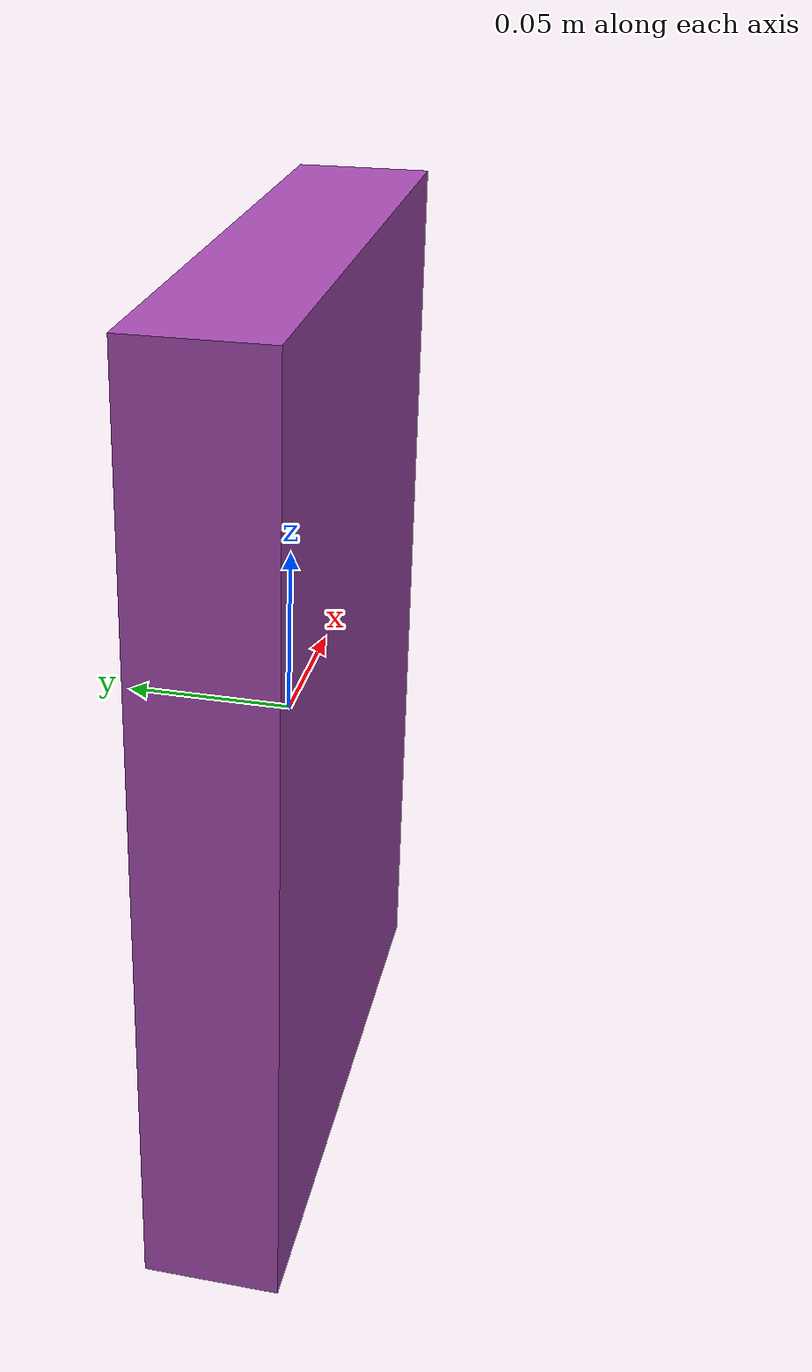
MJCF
<mujoco model="book_large">
  <compiler angle="radian"/>
  <!-- Full dimensions (m): 0.19 0.04 0.28; local X depth, Y thickness, Z height.
       Uniform-box inertia is explicit; geoms do not add mass. -->
  <worldbody>
    <body name="book">
      <freejoint name="book/free_joint"/>
      <inertial pos="0 0 0" quat="1 0 0 0" mass="0.75" diaginertia="0.005 0.00715625 0.00235625"/>
      <geom name="book/collision" type="box" size="0.095 0.02 0.14" mass="0"
            friction="0.9 0.005 0.0001" group="3" rgba="0 0 0 0"/>
      <geom name="book/visual" type="box" size="0.095 0.02 0.14" mass="0"
            contype="0" conaffinity="0" group="1" rgba="0.65 0.3 0.7 1"/>
      <site name="book/center" size="0.005 0 0" group="5"/>
      <site name="book/grasp_target" pos="-0.083 0 0"
            quat="0.5 0.5 0.5 0.5" size="0.005 0 0" rgba="1 0.5 0 1" group="1"/>
    </body>
  </worldbody>
</mujoco>
